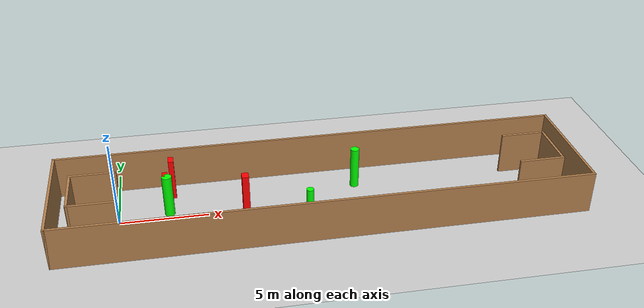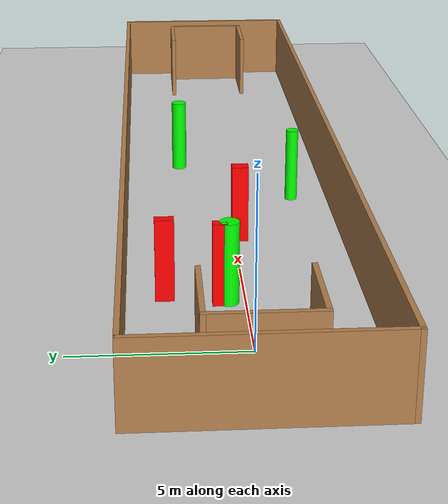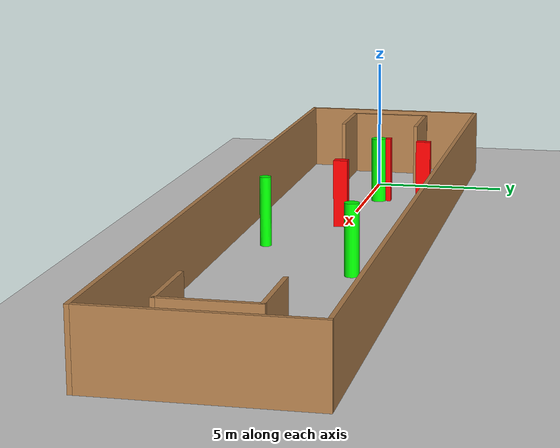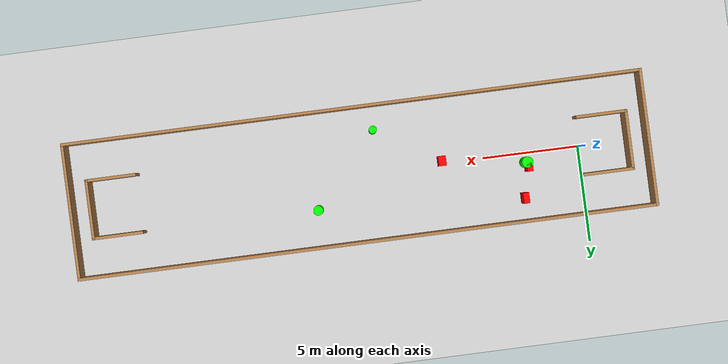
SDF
<sdf version="1.7">
 <world name="default">
  <light name="sun" type="directional">
   <pose>0 0 10 0 -0 0</pose>
   <diffuse>0.8 0.8 0.8 1</diffuse>
   <specular>0.2 0.2 0.2 1</specular>
   <attenuation>
    <range>1000</range>
    <constant>0.9</constant>
    <linear>0.01</linear>
    <quadratic>0.001</quadratic>
   </attenuation>
   <direction>-0.5 0.1 -0.9</direction>
   <spot><inner_angle>0</inner_angle><outer_angle>0</outer_angle><falloff>0</falloff></spot>
  </light>
  <model name="ground_plane">
   <static>1</static>
   <link name="link">
    <collision name="collision">
     <geometry><plane><normal>0 0 1</normal><size>100 100</size></plane></geometry>
     <surface>
      <contact><collide_bitmask>65535</collide_bitmask></contact>
      <friction><ode><mu>100</mu><mu2>50</mu2></ode></friction>
     </surface>
    </collision>
    <visual name="visual">
     <cast_shadows>0</cast_shadows>
     <geometry><plane><normal>0 0 1</normal><size>100 100</size></plane></geometry>
     <material>
      <script><uri>file://media/materials/scripts/gazebo.material</uri><name>Gazebo/Grey</name></script>
     </material>
    </visual>
   </link>
  </model>
  <gravity>0 0 -9.8</gravity>
  <magnetic_field>6e-06 2.3e-05 -4.2e-05</magnetic_field>
  <atmosphere type="adiabatic"/>
  <physics type="ode">
   <max_step_size>0.001</max_step_size>
   <real_time_factor>1</real_time_factor>
   <real_time_update_rate>1000</real_time_update_rate>
  </physics>
  <scene><ambient>0.4 0.4 0.4 1</ambient><background>0.7 0.7 0.7 1</background><shadows>1</shadows></scene>
  <spherical_coordinates>
   <surface_model>EARTH_WGS84</surface_model>
   <latitude_deg>0</latitude_deg>
   <longitude_deg>0</longitude_deg>
   <elevation>0</elevation>
   <heading_deg>0</heading_deg>
  </spherical_coordinates>
  <model name="my_base_walls">
   <link name="Wall_0">
    <collision name="Wall_0_Collision">
     <geometry><box><size>7.15 0.15 2.5</size></box></geometry>
     <pose>0 0 1.25 0 -0 0</pose>
    </collision>
    <visual name="Wall_0_Visual">
     <pose>0 0 1.25 0 -0 0</pose>
     <geometry><box><size>7.15 0.15 2.5</size></box></geometry>
     <material>
      <script><uri>file://media/materials/scripts/gazebo.material</uri><name>Gazebo/Wood</name></script>
      <ambient>1 1 1 1</ambient>
     </material>
     <meta><layer>0</layer></meta>
    </visual>
    <pose>-15 0 0 0 -0 1.5708</pose>
   </link>
   <link name="Wall_10">
    <collision name="Wall_10_Collision">
     <geometry><box><size>2.65 0.15 2.5</size></box></geometry>
     <pose>0 0 1.25 0 -0 0</pose>
    </collision>
    <visual name="Wall_10_Visual">
     <pose>0 0 1.25 0 -0 0</pose>
     <geometry><box><size>2.65 0.15 2.5</size></box></geometry>
     <material>
      <script><uri>file://media/materials/scripts/gazebo.material</uri><name>Gazebo/Wood</name></script>
      <ambient>1 1 1 1</ambient>
     </material>
     <meta><layer>0</layer></meta>
    </visual>
    <pose>-12.75 -1.5 0 0 -0 0</pose>
   </link>
   <link name="Wall_12">
    <collision name="Wall_12_Collision">
     <geometry><box><size>2.65 0.15 2.5</size></box></geometry>
     <pose>0 0 1.25 0 -0 0</pose>
    </collision>
    <visual name="Wall_12_Visual">
     <pose>0 0 1.25 0 -0 0</pose>
     <geometry><box><size>2.65 0.15 2.5</size></box></geometry>
     <material>
      <script><uri>file://media/materials/scripts/gazebo.material</uri><name>Gazebo/Wood</name></script>
      <ambient>1 1 1 1</ambient>
     </material>
     <meta><layer>0</layer></meta>
    </visual>
    <pose>-12.75 1.5 0 0 -0 0</pose>
   </link>
   <link name="Wall_14">
    <collision name="Wall_14_Collision">
     <geometry><box><size>3.15 0.15 2.5</size></box></geometry>
     <pose>0 0 1.25 0 -0 0</pose>
    </collision>
    <visual name="Wall_14_Visual">
     <pose>0 0 1.25 0 -0 0</pose>
     <geometry><box><size>3.15 0.15 2.5</size></box></geometry>
     <material>
      <script><uri>file://media/materials/scripts/gazebo.material</uri><name>Gazebo/Wood</name></script>
      <ambient>1 1 1 1</ambient>
     </material>
     <meta><layer>0</layer></meta>
    </visual>
    <pose>14 0 0 0 -0 -1.5708</pose>
   </link>
   <link name="Wall_15">
    <collision name="Wall_15_Collision">
     <geometry><box><size>2.65 0.15 2.5</size></box></geometry>
     <pose>0 0 1.25 0 -0 0</pose>
    </collision>
    <visual name="Wall_15_Visual">
     <pose>0 0 1.25 0 -0 0</pose>
     <geometry><box><size>2.65 0.15 2.5</size></box></geometry>
     <material>
      <script><uri>file://media/materials/scripts/gazebo.material</uri><name>Gazebo/Wood</name></script>
      <ambient>1 1 1 1</ambient>
     </material>
     <meta><layer>0</layer></meta>
    </visual>
    <pose>12.75 -1.5 0 0 -0 3.14159</pose>
   </link>
   <link name="Wall_17">
    <collision name="Wall_17_Collision">
     <geometry><box><size>2.65 0.15 2.5</size></box></geometry>
     <pose>0 0 1.25 0 -0 0</pose>
    </collision>
    <visual name="Wall_17_Visual">
     <pose>0 0 1.25 0 -0 0</pose>
     <geometry><box><size>2.65 0.15 2.5</size></box></geometry>
     <material>
      <script><uri>file://media/materials/scripts/gazebo.material</uri><name>Gazebo/Wood</name></script>
      <ambient>1 1 1 1</ambient>
     </material>
     <meta><layer>0</layer></meta>
    </visual>
    <pose>12.75 1.5 0 0 -0 3.14159</pose>
   </link>
   <link name="Wall_2">
    <collision name="Wall_2_Collision">
     <geometry><box><size>30.15 0.15 2.5</size></box></geometry>
     <pose>0 0 1.25 0 -0 0</pose>
    </collision>
    <visual name="Wall_2_Visual">
     <pose>0 0 1.25 0 -0 0</pose>
     <geometry><box><size>30.15 0.15 2.5</size></box></geometry>
     <material>
      <script><uri>file://media/materials/scripts/gazebo.material</uri><name>Gazebo/Wood</name></script>
      <ambient>1 1 1 1</ambient>
     </material>
     <meta><layer>0</layer></meta>
    </visual>
    <pose>-0 -3.5 0 0 -0 0</pose>
   </link>
   <link name="Wall_4">
    <collision name="Wall_4_Collision">
     <geometry><box><size>30.15 0.15 2.5</size></box></geometry>
     <pose>0 0 1.25 0 -0 0</pose>
    </collision>
    <visual name="Wall_4_Visual">
     <pose>0 0 1.25 0 -0 0</pose>
     <geometry><box><size>30.15 0.15 2.5</size></box></geometry>
     <material>
      <script><uri>file://media/materials/scripts/gazebo.material</uri><name>Gazebo/Wood</name></script>
      <ambient>1 1 1 1</ambient>
     </material>
     <meta><layer>0</layer></meta>
    </visual>
    <pose>-0 3.5 0 0 -0 0</pose>
   </link>
   <link name="Wall_6">
    <collision name="Wall_6_Collision">
     <geometry><box><size>7.15 0.15 2.5</size></box></geometry>
     <pose>0 0 1.25 0 -0 0</pose>
    </collision>
    <visual name="Wall_6_Visual">
     <pose>0 0 1.25 0 -0 0</pose>
     <geometry><box><size>7.15 0.15 2.5</size></box></geometry>
     <material>
      <script><uri>file://media/materials/scripts/gazebo.material</uri><name>Gazebo/Wood</name></script>
      <ambient>1 1 1 1</ambient>
     </material>
     <meta><layer>0</layer></meta>
    </visual>
    <pose>15 0 0 0 -0 -1.5708</pose>
   </link>
   <link name="Wall_9">
    <collision name="Wall_9_Collision">
     <geometry><box><size>3.15 0.15 2.5</size></box></geometry>
     <pose>0 0 1.25 0 -0 0</pose>
    </collision>
    <visual name="Wall_9_Visual">
     <pose>0 0 1.25 0 -0 0</pose>
     <geometry><box><size>3.15 0.15 2.5</size></box></geometry>
     <material>
      <script><uri>file://media/materials/scripts/gazebo.material</uri><name>Gazebo/Wood</name></script>
      <ambient>1 1 1 1</ambient>
     </material>
     <meta><layer>0</layer></meta>
    </visual>
    <pose>-14 0 0 0 -0 -1.5708</pose>
   </link>
   <static>1</static>
   <pose>11.5 0 0 0 -0 0</pose>
  </model>
  <model name="cylinder1">
   <static>1</static>
   <link name="link">
    <inertial>
     <mass>1</mass>
     <inertia><ixx>0.5</ixx><ixy>0</ixy><ixz>0</ixz><iyy>0.5</iyy><iyz>0</iyz><izz>1</izz></inertia>
    </inertial>
    <collision name="collision">
     <geometry><cylinder><radius>0.2534390328038384</radius><length>2.5</length></cylinder></geometry>
    </collision>
    <visual name="visual">
     <geometry><cylinder><radius>0.2534390328038384</radius><length>2.5</length></cylinder></geometry>
     <material>
      <ambient>0 1 0 1</ambient>
      <diffuse>0 1 0 1</diffuse>
      <specular>0.1 0.1 0.1 1</specular>
      <emissive>0 0 0 0</emissive>
     </material>
    </visual>
   </link>
   <pose>13.84570455684844 1.55926139016188 1.25 0 0 0</pose>
  </model>
  <model name="cylinder2">
   <static>1</static>
   <link name="link">
    <inertial>
     <mass>1</mass>
     <inertia><ixx>0.5</ixx><ixy>0</ixy><ixz>0</ixz><iyy>0.5</iyy><iyz>0</iyz><izz>1</izz></inertia>
    </inertial>
    <collision name="collision">
     <geometry><cylinder><radius>0.20491861556411717</radius><length>2.5</length></cylinder></geometry>
    </collision>
    <visual name="visual">
     <geometry><cylinder><radius>0.20491861556411717</radius><length>2.5</length></cylinder></geometry>
     <material>
      <ambient>0 1 0 1</ambient>
      <diffuse>0 1 0 1</diffuse>
      <specular>0.1 0.1 0.1 1</specular>
      <emissive>0 0 0 0</emissive>
     </material>
    </visual>
   </link>
   <pose>10.533155552224224 -2.20327151073428 1.25 0 0 0</pose>
  </model>
  <model name="cylinder3">
   <static>1</static>
   <link name="link">
    <inertial>
     <mass>1</mass>
     <inertia><ixx>0.5</ixx><ixy>0</ixy><ixz>0</ixz><iyy>0.5</iyy><iyz>0</iyz><izz>1</izz></inertia>
    </inertial>
    <collision name="collision">
     <geometry><cylinder><radius>0.2881981796930514</radius><length>2.5</length></cylinder></geometry>
    </collision>
    <visual name="visual">
     <geometry><cylinder><radius>0.2881981796930514</radius><length>2.5</length></cylinder></geometry>
     <material>
      <ambient>0 1 0 1</ambient>
      <diffuse>0 1 0 1</diffuse>
      <specular>0.1 0.1 0.1 1</specular>
      <emissive>0 0 0 0</emissive>
     </material>
    </visual>
   </link>
   <pose>2.842127016260047 0.48449566542834566 1.25 0 0 0</pose>
  </model>
  <model name="box1">
   <static>1</static>
   <link name="link">
    <inertial>
     <mass>1</mass>
     <inertia><ixx>0.083</ixx><ixy>0</ixy><ixz>0</ixz><iyy>0.083</iyy><iyz>0</iyz><izz>0.083</izz></inertia>
    </inertial>
    <collision name="collision">
     <geometry><box><size>0.30009606824756646 0.42837688659420814 2.5</size></box></geometry>
    </collision>
    <visual name="visual">
     <geometry><box><size>0.30009606824756646 0.42837688659420814 2.5</size></box></geometry>
     <material>
      <ambient>1 0 0 1</ambient>
      <diffuse>1 0 0 1</diffuse>
      <specular>0.1 0.1 0.1 1</specular>
      <emissive>0 0 0 0</emissive>
     </material>
    </visual>
    <sensor name="my_contact" type="contact">
     <contact><collision>box_collision</collision><topic>__default_topic__</topic></contact>
    </sensor>
   </link>
   <pose>2.753436284962417 0.7509355652701268 1.25 0 0 0</pose>
  </model>
  <model name="box2">
   <static>1</static>
   <link name="link">
    <inertial>
     <mass>1</mass>
     <inertia><ixx>0.083</ixx><ixy>0</ixy><ixz>0</ixz><iyy>0.083</iyy><iyz>0</iyz><izz>0.083</izz></inertia>
    </inertial>
    <collision name="collision">
     <geometry><box><size>0.3903172326273003 0.5159140691872718 2.5</size></box></geometry>
    </collision>
    <visual name="visual">
     <geometry><box><size>0.3903172326273003 0.5159140691872718 2.5</size></box></geometry>
     <material>
      <ambient>1 0 0 1</ambient>
      <diffuse>1 0 0 1</diffuse>
      <specular>0.1 0.1 0.1 1</specular>
      <emissive>0 0 0 0</emissive>
     </material>
    </visual>
    <sensor name="my_contact" type="contact">
     <contact><collision>box_collision</collision><topic>__default_topic__</topic></contact>
    </sensor>
   </link>
   <pose>7.188804497501646 -0.15342237019235938 1.25 0 0 0</pose>
  </model>
  <model name="box3">
   <static>1</static>
   <link name="link">
    <inertial>
     <mass>1</mass>
     <inertia><ixx>0.083</ixx><ixy>0</ixy><ixz>0</ixz><iyy>0.083</iyy><iyz>0</iyz><izz>0.083</izz></inertia>
    </inertial>
    <collision name="collision">
     <geometry><box><size>0.30710400329109877 0.5547825529682453 2.5</size></box></geometry>
    </collision>
    <visual name="visual">
     <geometry><box><size>0.30710400329109877 0.5547825529682453 2.5</size></box></geometry>
     <material>
      <ambient>1 0 0 1</ambient>
      <diffuse>1 0 0 1</diffuse>
      <specular>0.1 0.1 0.1 1</specular>
      <emissive>0 0 0 0</emissive>
     </material>
    </visual>
    <sensor name="my_contact" type="contact">
     <contact><collision>box_collision</collision><topic>__default_topic__</topic></contact>
    </sensor>
   </link>
   <pose>3.1366619552283215 2.302208532720133 1.25 0 0 0</pose>
  </model>
 </world>
</sdf>
